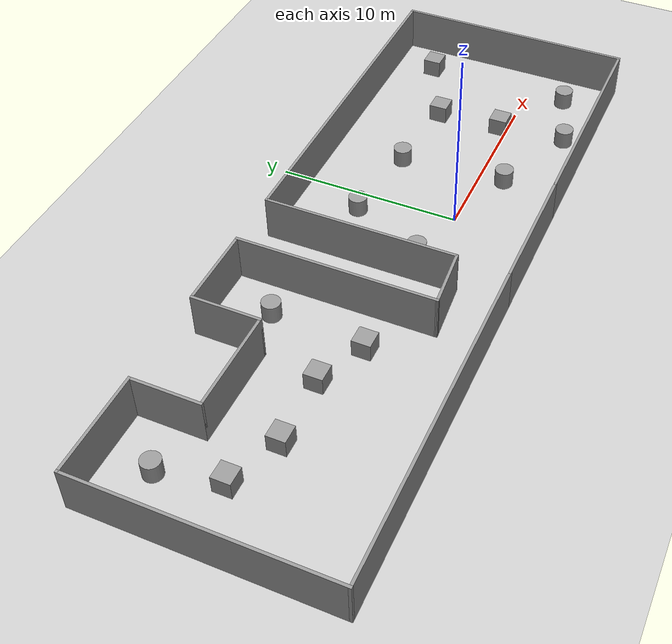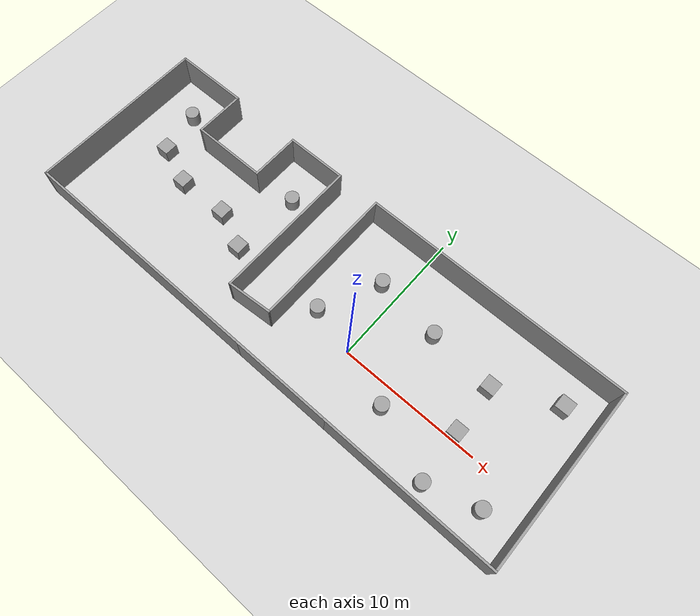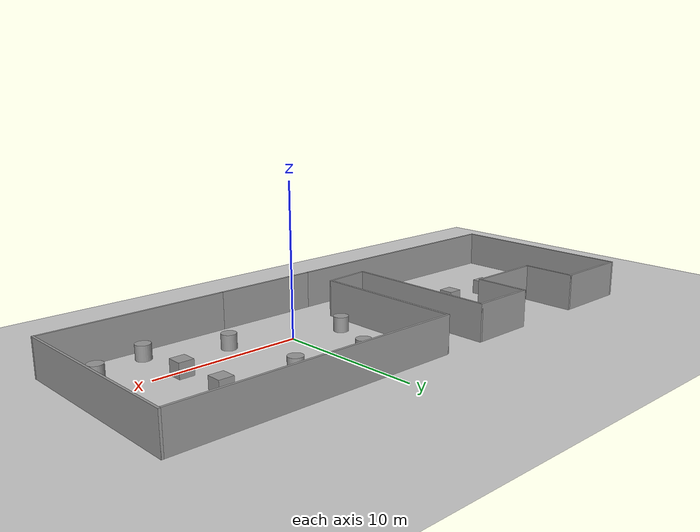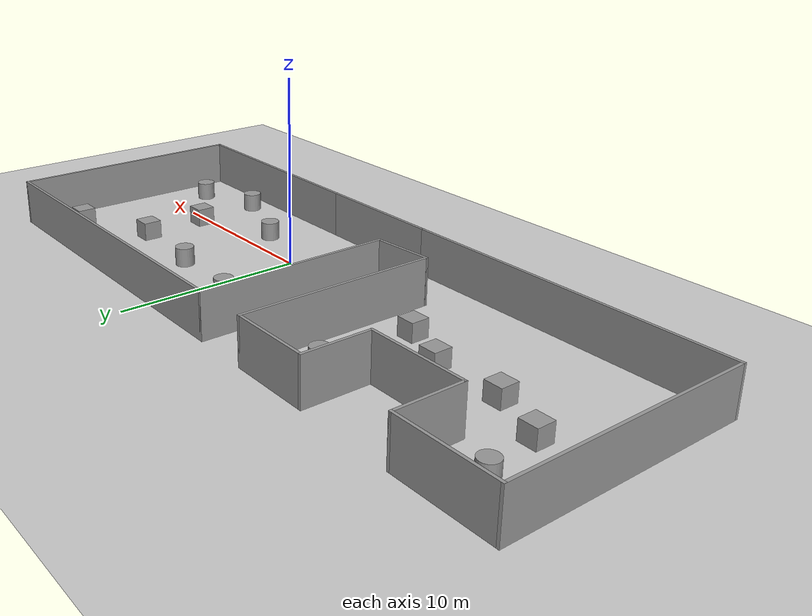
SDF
<sdf version="1.7">
 <world name="default">
  <light name="sun" type="directional">
   <pose>0 0 10 0 -0 0</pose>
   <diffuse>0.8 0.8 0.8 1</diffuse>
   <specular>0.2 0.2 0.2 1</specular>
   <attenuation>
    <range>1000</range>
    <constant>0.9</constant>
    <linear>0.01</linear>
    <quadratic>0.001</quadratic>
   </attenuation>
   <direction>-0.5 0.1 -0.9</direction>
   <spot><inner_angle>0</inner_angle><outer_angle>0</outer_angle><falloff>0</falloff></spot>
  </light>
  <model name="ground_plane">
   <static>1</static>
   <link name="link">
    <collision name="collision">
     <geometry><plane><normal>0 0 1</normal><size>100 100</size></plane></geometry>
     <surface><friction><ode><mu>100</mu><mu2>50</mu2></ode></friction></surface>
    </collision>
    <visual name="visual">
     <cast_shadows>0</cast_shadows>
     <geometry><plane><normal>0 0 1</normal><size>100 100</size></plane></geometry>
     <material>
      <script><uri>file://media/materials/scripts/gazebo.material</uri><name>Gazebo/Grey</name></script>
     </material>
    </visual>
   </link>
  </model>
  <gravity>0 0 -9.8</gravity>
  <magnetic_field>6e-06 2.3e-05 -4.2e-05</magnetic_field>
  <atmosphere type="adiabatic"/>
  <physics type="ode">
   <max_step_size>0.001</max_step_size>
   <real_time_factor>1</real_time_factor>
   <real_time_update_rate>1000</real_time_update_rate>
  </physics>
  <scene><ambient>0.4 0.4 0.4 1</ambient><background>0.7 0.7 0.7 1</background><shadows>1</shadows></scene>
  <audio><device>default</device></audio>
  <spherical_coordinates>
   <surface_model>EARTH_WGS84</surface_model>
   <latitude_deg>0</latitude_deg>
   <longitude_deg>0</longitude_deg>
   <elevation>0</elevation>
   <heading_deg>0</heading_deg>
  </spherical_coordinates>
  <model name="Untitled">
   <pose>-4.35455 1.88069 0 0 -0 0</pose>
   <link name="Wall_1">
    <collision name="Wall_1_Collision">
     <geometry><box><size>10.5 0.15 2.5</size></box></geometry>
     <pose>0 0 1.25 0 -0 0</pose>
    </collision>
    <visual name="Wall_1_Visual">
     <pose>0 0 1.25 0 -0 0</pose>
     <geometry><box><size>10.5 0.15 2.5</size></box></geometry>
     <material>
      <script><uri>file://media/materials/scripts/gazebo.material</uri><name>Gazebo/Grey</name></script>
      <ambient>1 1 1 1</ambient>
     </material>
     <meta><layer>0</layer></meta>
    </visual>
    <pose>-0.575 1.375 0 0 -0 1.5708</pose>
   </link>
   <link name="Wall_10">
    <collision name="Wall_10_Collision">
     <geometry><box><size>5.5 0.15 2.5</size></box></geometry>
     <pose>0 0 1.25 0 -0 0</pose>
    </collision>
    <visual name="Wall_10_Visual">
     <pose>0 0 1.25 0 -0 0</pose>
     <geometry><box><size>5.5 0.15 2.5</size></box></geometry>
     <material>
      <script><uri>file://media/materials/scripts/gazebo.material</uri><name>Gazebo/Grey</name></script>
      <ambient>1 1 1 1</ambient>
     </material>
     <meta><layer>0</layer></meta>
    </visual>
    <pose>-10.75 2.95 0 0 -0 0</pose>
   </link>
   <link name="Wall_11">
    <collision name="Wall_11_Collision">
     <geometry><box><size>3.75 0.15 2.5</size></box></geometry>
     <pose>0 0 1.25 0 -0 0</pose>
    </collision>
    <visual name="Wall_11_Visual">
     <pose>0 0 1.25 0 -0 0</pose>
     <geometry><box><size>3.75 0.15 2.5</size></box></geometry>
     <material>
      <script><uri>file://media/materials/scripts/gazebo.material</uri><name>Gazebo/Grey</name></script>
      <ambient>1 1 1 1</ambient>
     </material>
     <meta><layer>0</layer></meta>
    </visual>
    <pose>-8.075 4.75 0 0 -0 1.5708</pose>
   </link>
   <link name="Wall_12">
    <collision name="Wall_12_Collision">
     <geometry><box><size>4.5 0.15 2.5</size></box></geometry>
     <pose>0 0 1.25 0 -0 0</pose>
    </collision>
    <visual name="Wall_12_Visual">
     <pose>0 0 1.25 0 -0 0</pose>
     <geometry><box><size>4.5 0.15 2.5</size></box></geometry>
     <material>
      <script><uri>file://media/materials/scripts/gazebo.material</uri><name>Gazebo/Grey</name></script>
      <ambient>1 1 1 1</ambient>
     </material>
     <meta><layer>0</layer></meta>
    </visual>
    <pose>-5.9 6.55 0 0 -0 0</pose>
   </link>
   <link name="Wall_13">
    <collision name="Wall_13_Collision">
     <geometry><box><size>10.75 0.15 2.5</size></box></geometry>
     <pose>0 0 1.25 0 -0 0</pose>
    </collision>
    <visual name="Wall_13_Visual">
     <pose>0 0 1.25 0 -0 0</pose>
     <geometry><box><size>10.75 0.15 2.5</size></box></geometry>
     <material>
      <script><uri>file://media/materials/scripts/gazebo.material</uri><name>Gazebo/Grey</name></script>
      <ambient>1 1 1 1</ambient>
     </material>
     <meta><layer>0</layer></meta>
    </visual>
    <pose>-3.725 1.25 0 0 -0 -1.5708</pose>
   </link>
   <link name="Wall_14">
    <collision name="Wall_14_Collision">
     <geometry><box><size>3.30991 0.15 2.5</size></box></geometry>
     <pose>0 0 1.25 0 -0 0</pose>
    </collision>
    <visual name="Wall_14_Visual">
     <pose>0 0 1.25 0 -0 0</pose>
     <geometry><box><size>3.30991 0.15 2.5</size></box></geometry>
     <material>
      <script><uri>file://media/materials/scripts/gazebo.material</uri><name>Gazebo/Grey</name></script>
      <ambient>1 1 1 1</ambient>
     </material>
     <meta><layer>0</layer></meta>
    </visual>
    <pose>-2.15 -3.925 0 0 -0 0.079199</pose>
   </link>
   <link name="Wall_2">
    <collision name="Wall_2_Collision">
     <geometry><box><size>19.5 0.15 2.5</size></box></geometry>
     <pose>0 0 1.25 0 -0 0</pose>
    </collision>
    <visual name="Wall_2_Visual">
     <pose>0 0 1.25 0 -0 0</pose>
     <geometry><box><size>19.5 0.15 2.5</size></box></geometry>
     <material>
      <script><uri>file://media/materials/scripts/gazebo.material</uri><name>Gazebo/Grey</name></script>
      <ambient>1 1 1 1</ambient>
     </material>
     <meta><layer>0</layer></meta>
    </visual>
    <pose>9.1 6.55 0 0 -0 0</pose>
   </link>
   <link name="Wall_3">
    <collision name="Wall_3_Collision">
     <geometry><box><size>13.25 0.15 2.5</size></box></geometry>
     <pose>0 0 1.25 0 -0 0</pose>
    </collision>
    <visual name="Wall_3_Visual">
     <pose>0 0 1.25 0 -0 0</pose>
     <geometry><box><size>13.25 0.15 2.5</size></box></geometry>
     <material>
      <script><uri>file://media/materials/scripts/gazebo.material</uri><name>Gazebo/Grey</name></script>
      <ambient>1 1 1 1</ambient>
     </material>
     <meta><layer>0</layer></meta>
    </visual>
    <pose>18.775 0 0 0 -0 -1.5708</pose>
   </link>
   <link name="Wall_4">
    <collision name="Wall_4_Collision">
     <geometry><box><size>12.5 0.15 2.5</size></box></geometry>
     <pose>0 0 1.25 0 -0 0</pose>
    </collision>
    <visual name="Wall_4_Visual">
     <pose>0 0 1.25 0 -0 0</pose>
     <geometry><box><size>12.5 0.15 2.5</size></box></geometry>
     <material>
      <script><uri>file://media/materials/scripts/gazebo.material</uri><name>Gazebo/Grey</name></script>
      <ambient>1 1 1 1</ambient>
     </material>
     <meta><layer>0</layer></meta>
    </visual>
    <pose>12.6 -6.55 0 0 -0 3.14159</pose>
   </link>
   <link name="Wall_5">
    <collision name="Wall_5_Collision">
     <geometry><box><size>7.25 0.15 2.5</size></box></geometry>
     <pose>0 0 1.25 0 -0 0</pose>
    </collision>
    <visual name="Wall_5_Visual">
     <pose>0 0 1.25 0 -0 0</pose>
     <geometry><box><size>7.25 0.15 2.5</size></box></geometry>
     <material>
      <script><uri>file://media/materials/scripts/gazebo.material</uri><name>Gazebo/Grey</name></script>
      <ambient>1 1 1 1</ambient>
     </material>
     <meta><layer>0</layer></meta>
    </visual>
    <pose>2.875 -6.55 0 0 -0 3.14159</pose>
   </link>
   <link name="Wall_6">
    <collision name="Wall_6_Collision">
     <geometry><box><size>18.25 0.15 2.5</size></box></geometry>
     <pose>0 0 1.25 0 -0 0</pose>
    </collision>
    <visual name="Wall_6_Visual">
     <pose>0 0 1.25 0 -0 0</pose>
     <geometry><box><size>18.25 0.15 2.5</size></box></geometry>
     <material>
      <script><uri>file://media/materials/scripts/gazebo.material</uri><name>Gazebo/Grey</name></script>
      <ambient>1 1 1 1</ambient>
     </material>
     <meta><layer>0</layer></meta>
    </visual>
    <pose>-9.725 -6.55 0 0 -0 3.14159</pose>
   </link>
   <link name="Wall_7">
    <collision name="Wall_7_Collision">
     <geometry><box><size>13.25 0.15 2.5</size></box></geometry>
     <pose>0 0 1.25 0 -0 0</pose>
    </collision>
    <visual name="Wall_7_Visual">
     <pose>0 0 1.25 0 -0 0</pose>
     <geometry><box><size>13.25 0.15 2.5</size></box></geometry>
     <material>
      <script><uri>file://media/materials/scripts/gazebo.material</uri><name>Gazebo/Grey</name></script>
      <ambient>1 1 1 1</ambient>
     </material>
     <meta><layer>0</layer></meta>
    </visual>
    <pose>-18.775 0 0 0 -0 1.5708</pose>
   </link>
   <link name="Wall_8">
    <collision name="Wall_8_Collision">
     <geometry><box><size>5.5 0.15 2.5</size></box></geometry>
     <pose>0 0 1.25 0 -0 0</pose>
    </collision>
    <visual name="Wall_8_Visual">
     <pose>0 0 1.25 0 -0 0</pose>
     <geometry><box><size>5.5 0.15 2.5</size></box></geometry>
     <material>
      <script><uri>file://media/materials/scripts/gazebo.material</uri><name>Gazebo/Grey</name></script>
      <ambient>1 1 1 1</ambient>
     </material>
     <meta><layer>0</layer></meta>
    </visual>
    <pose>-16.1 6.55 0 0 -0 0</pose>
   </link>
   <link name="Wall_9">
    <collision name="Wall_9_Collision">
     <geometry><box><size>3.75 0.15 2.5</size></box></geometry>
     <pose>0 0 1.25 0 -0 0</pose>
    </collision>
    <visual name="Wall_9_Visual">
     <pose>0 0 1.25 0 -0 0</pose>
     <geometry><box><size>3.75 0.15 2.5</size></box></geometry>
     <material>
      <script><uri>file://media/materials/scripts/gazebo.material</uri><name>Gazebo/Grey</name></script>
      <ambient>1 1 1 1</ambient>
     </material>
     <meta><layer>0</layer></meta>
    </visual>
    <pose>-13.425 4.75 0 0 -0 -1.5708</pose>
   </link>
   <static>1</static>
  </model>
  <model name="unit_box">
   <pose>8.15841 4.02491 0.499995 0 1e-05 0</pose>
   <link name="link">
    <inertial>
     <mass>1</mass>
     <inertia>
      <ixx>0.166667</ixx>
      <ixy>0</ixy>
      <ixz>0</ixz>
      <iyy>0.166667</iyy>
      <iyz>0</iyz>
      <izz>0.166667</izz>
     </inertia>
    </inertial>
    <collision name="collision"><geometry><box><size>1 1 1</size></box></geometry></collision>
    <visual name="visual">
     <geometry><box><size>1 1 1</size></box></geometry>
     <material>
      <script><name>Gazebo/Grey</name><uri>file://media/materials/scripts/gazebo.material</uri></script>
     </material>
    </visual>
   </link>
  </model>
  <model name="unit_box_0">
   <pose>8.31649 0.425985 0.499995 -1e-05 -0 -0</pose>
   <link name="link">
    <inertial>
     <mass>1</mass>
     <inertia>
      <ixx>0.166667</ixx>
      <ixy>0</ixy>
      <ixz>0</ixz>
      <iyy>0.166667</iyy>
      <iyz>0</iyz>
      <izz>0.166667</izz>
     </inertia>
    </inertial>
    <collision name="collision"><geometry><box><size>1 1 1</size></box></geometry></collision>
    <visual name="visual">
     <geometry><box><size>1 1 1</size></box></geometry>
     <material>
      <script><name>Gazebo/Grey</name><uri>file://media/materials/scripts/gazebo.material</uri></script>
     </material>
    </visual>
   </link>
  </model>
  <model name="unit_cylinder">
   <pose>-1.32685 5.01169 0.499998 3e-06 -3e-06 0</pose>
   <link name="link">
    <inertial>
     <mass>1</mass>
     <inertia><ixx>0.145833</ixx><ixy>0</ixy><ixz>0</ixz><iyy>0.145833</iyy><iyz>0</iyz><izz>0.125</izz></inertia>
    </inertial>
    <collision name="collision">
     <geometry><cylinder><radius>0.5</radius><length>1</length></cylinder></geometry>
    </collision>
    <visual name="visual">
     <geometry><cylinder><radius>0.5</radius><length>1</length></cylinder></geometry>
     <material>
      <script><name>Gazebo/Grey</name><uri>file://media/materials/scripts/gazebo.material</uri></script>
     </material>
    </visual>
   </link>
  </model>
  <model name="unit_cylinder_0">
   <pose>3.42659 4.43957 0.499992 -3e-06 3e-06 0</pose>
   <link name="link">
    <inertial>
     <mass>1</mass>
     <inertia><ixx>0.145833</ixx><ixy>0</ixy><ixz>0</ixz><iyy>0.145833</iyy><iyz>0</iyz><izz>0.125</izz></inertia>
    </inertial>
    <collision name="collision">
     <geometry><cylinder><radius>0.5</radius><length>1</length></cylinder></geometry>
    </collision>
    <visual name="visual">
     <geometry><cylinder><radius>0.5</radius><length>1</length></cylinder></geometry>
     <material>
      <script><name>Gazebo/Grey</name><uri>file://media/materials/scripts/gazebo.material</uri></script>
     </material>
    </visual>
   </link>
  </model>
  <model name="unit_cylinder_1">
   <pose>3.88356 -1.37176 0.499992 -3e-06 3e-06 0</pose>
   <link name="link">
    <inertial>
     <mass>1</mass>
     <inertia><ixx>0.145833</ixx><ixy>0</ixy><ixz>0</ixz><iyy>0.145833</iyy><iyz>0</iyz><izz>0.125</izz></inertia>
    </inertial>
    <collision name="collision">
     <geometry><cylinder><radius>0.5</radius><length>1</length></cylinder></geometry>
    </collision>
    <visual name="visual">
     <geometry><cylinder><radius>0.5</radius><length>1</length></cylinder></geometry>
     <material>
      <script><name>Gazebo/Grey</name><uri>file://media/materials/scripts/gazebo.material</uri></script>
     </material>
    </visual>
   </link>
  </model>
  <model name="unit_cylinder_2">
   <pose>-3.32573 0.802601 0.499992 -3e-06 3e-06 0</pose>
   <link name="link">
    <inertial>
     <mass>1</mass>
     <inertia><ixx>0.145833</ixx><ixy>0</ixy><ixz>0</ixz><iyy>0.145833</iyy><iyz>0</iyz><izz>0.125</izz></inertia>
    </inertial>
    <collision name="collision">
     <geometry><cylinder><radius>0.5</radius><length>1</length></cylinder></geometry>
    </collision>
    <visual name="visual">
     <geometry><cylinder><radius>0.5</radius><length>1</length></cylinder></geometry>
     <material>
      <script><name>Gazebo/Grey</name><uri>file://media/materials/scripts/gazebo.material</uri></script>
     </material>
    </visual>
   </link>
  </model>
  <model name="unit_box_1">
   <pose>-10.2782 0.561821 0.499995 0 1e-05 0</pose>
   <link name="link">
    <inertial>
     <mass>1</mass>
     <inertia>
      <ixx>0.166667</ixx>
      <ixy>0</ixy>
      <ixz>0</ixz>
      <iyy>0.166667</iyy>
      <iyz>0</iyz>
      <izz>0.166667</izz>
     </inertia>
    </inertial>
    <collision name="collision"><geometry><box><size>1 1 1</size></box></geometry></collision>
    <visual name="visual">
     <geometry><box><size>1 1 1</size></box></geometry>
     <material>
      <script><name>Gazebo/Grey</name><uri>file://media/materials/scripts/gazebo.material</uri></script>
     </material>
    </visual>
   </link>
  </model>
  <model name="unit_box_2">
   <pose>-12.9773 1.73018 0.499995 -1e-05 -0 -0</pose>
   <link name="link">
    <inertial>
     <mass>1</mass>
     <inertia>
      <ixx>0.166667</ixx>
      <ixy>0</ixy>
      <ixz>0</ixz>
      <iyy>0.166667</iyy>
      <iyz>0</iyz>
      <izz>0.166667</izz>
     </inertia>
    </inertial>
    <collision name="collision"><geometry><box><size>1 1 1</size></box></geometry></collision>
    <visual name="visual">
     <geometry><box><size>1 1 1</size></box></geometry>
     <material>
      <script><name>Gazebo/Grey</name><uri>file://media/materials/scripts/gazebo.material</uri></script>
     </material>
    </visual>
   </link>
  </model>
  <model name="unit_box_3">
   <pose>-19.5822 2.78523 0.499995 0 1e-05 0</pose>
   <link name="link">
    <inertial>
     <mass>1</mass>
     <inertia>
      <ixx>0.166667</ixx>
      <ixy>0</ixy>
      <ixz>0</ixz>
      <iyy>0.166667</iyy>
      <iyz>0</iyz>
      <izz>0.166667</izz>
     </inertia>
    </inertial>
    <collision name="collision"><geometry><box><size>1 1 1</size></box></geometry></collision>
    <visual name="visual">
     <geometry><box><size>1 1 1</size></box></geometry>
     <material>
      <script><name>Gazebo/Grey</name><uri>file://media/materials/scripts/gazebo.material</uri></script>
     </material>
    </visual>
   </link>
  </model>
  <model name="unit_box_4">
   <pose>-16.7347 1.67525 0.499995 -1e-05 -0 -0</pose>
   <link name="link">
    <inertial>
     <mass>1</mass>
     <inertia>
      <ixx>0.166667</ixx>
      <ixy>0</ixy>
      <ixz>0</ixz>
      <iyy>0.166667</iyy>
      <iyz>0</iyz>
      <izz>0.166667</izz>
     </inertia>
    </inertial>
    <collision name="collision"><geometry><box><size>1 1 1</size></box></geometry></collision>
    <visual name="visual">
     <geometry><box><size>1 1 1</size></box></geometry>
     <material>
      <script><name>Gazebo/Grey</name><uri>file://media/materials/scripts/gazebo.material</uri></script>
     </material>
    </visual>
   </link>
  </model>
  <model name="unit_cylinder_3">
   <pose>-20.2892 6.03349 0.499992 -3e-06 -4e-06 -0</pose>
   <link name="link">
    <inertial>
     <mass>1</mass>
     <inertia><ixx>0.145833</ixx><ixy>0</ixy><ixz>0</ixz><iyy>0.145833</iyy><iyz>0</iyz><izz>0.125</izz></inertia>
    </inertial>
    <collision name="collision">
     <geometry><cylinder><radius>0.5</radius><length>1</length></cylinder></geometry>
    </collision>
    <visual name="visual">
     <geometry><cylinder><radius>0.5</radius><length>1</length></cylinder></geometry>
     <material>
      <script><name>Gazebo/Grey</name><uri>file://media/materials/scripts/gazebo.material</uri></script>
     </material>
    </visual>
   </link>
  </model>
  <model name="unit_cylinder_4">
   <pose>-10.0168 5.65705 0.499993 -3e-06 -3e-06 0</pose>
   <link name="link">
    <inertial>
     <mass>1</mass>
     <inertia><ixx>0.145833</ixx><ixy>0</ixy><ixz>0</ixz><iyy>0.145833</iyy><iyz>0</iyz><izz>0.125</izz></inertia>
    </inertial>
    <collision name="collision">
     <geometry><cylinder><radius>0.5</radius><length>1</length></cylinder></geometry>
    </collision>
    <visual name="visual">
     <geometry><cylinder><radius>0.5</radius><length>1</length></cylinder></geometry>
     <material>
      <script><name>Gazebo/Grey</name><uri>file://media/materials/scripts/gazebo.material</uri></script>
     </material>
    </visual>
   </link>
  </model>
  <model name="unit_box_5">
   <pose>12.2959 6.06174 0.499995 0 1e-05 0</pose>
   <link name="link">
    <inertial>
     <mass>1</mass>
     <inertia>
      <ixx>0.166667</ixx>
      <ixy>0</ixy>
      <ixz>0</ixz>
      <iyy>0.166667</iyy>
      <iyz>0</iyz>
      <izz>0.166667</izz>
     </inertia>
    </inertial>
    <collision name="collision"><geometry><box><size>1 1 1</size></box></geometry></collision>
    <visual name="visual">
     <geometry><box><size>1 1 1</size></box></geometry>
     <material>
      <script><name>Gazebo/Grey</name><uri>file://media/materials/scripts/gazebo.material</uri></script>
     </material>
    </visual>
   </link>
  </model>
  <model name="unit_cylinder_5">
   <pose>12.1505 -2.20043 0.499993 -3e-06 -4e-06 -0</pose>
   <link name="link">
    <inertial>
     <mass>1</mass>
     <inertia><ixx>0.145833</ixx><ixy>0</ixy><ixz>0</ixz><iyy>0.145833</iyy><iyz>0</iyz><izz>0.125</izz></inertia>
    </inertial>
    <collision name="collision">
     <geometry><cylinder><radius>0.5</radius><length>1</length></cylinder></geometry>
    </collision>
    <visual name="visual">
     <geometry><cylinder><radius>0.5</radius><length>1</length></cylinder></geometry>
     <material>
      <script><name>Gazebo/Grey</name><uri>file://media/materials/scripts/gazebo.material</uri></script>
     </material>
    </visual>
   </link>
  </model>
  <model name="unit_cylinder_6">
   <pose>8.59304 -3.31167 0.499997 3e-06 4e-06 -0</pose>
   <link name="link">
    <inertial>
     <mass>1</mass>
     <inertia><ixx>0.145833</ixx><ixy>0</ixy><ixz>0</ixz><iyy>0.145833</iyy><iyz>0</iyz><izz>0.125</izz></inertia>
    </inertial>
    <collision name="collision">
     <geometry><cylinder><radius>0.5</radius><length>1</length></cylinder></geometry>
    </collision>
    <visual name="visual">
     <geometry><cylinder><radius>0.5</radius><length>1</length></cylinder></geometry>
     <material>
      <script><name>Gazebo/Grey</name><uri>file://media/materials/scripts/gazebo.material</uri></script>
     </material>
    </visual>
   </link>
  </model>
 </world>
</sdf>
